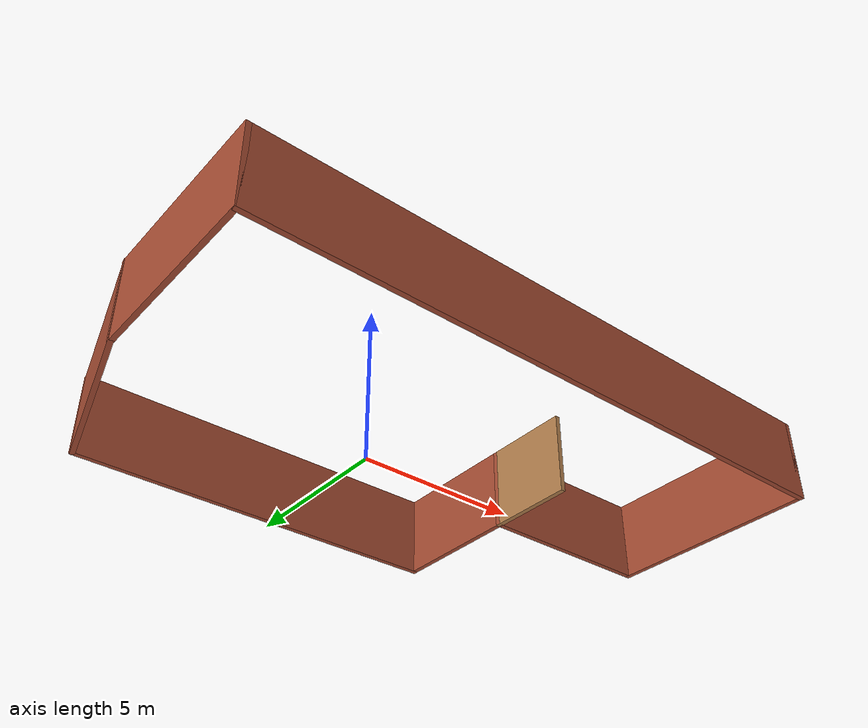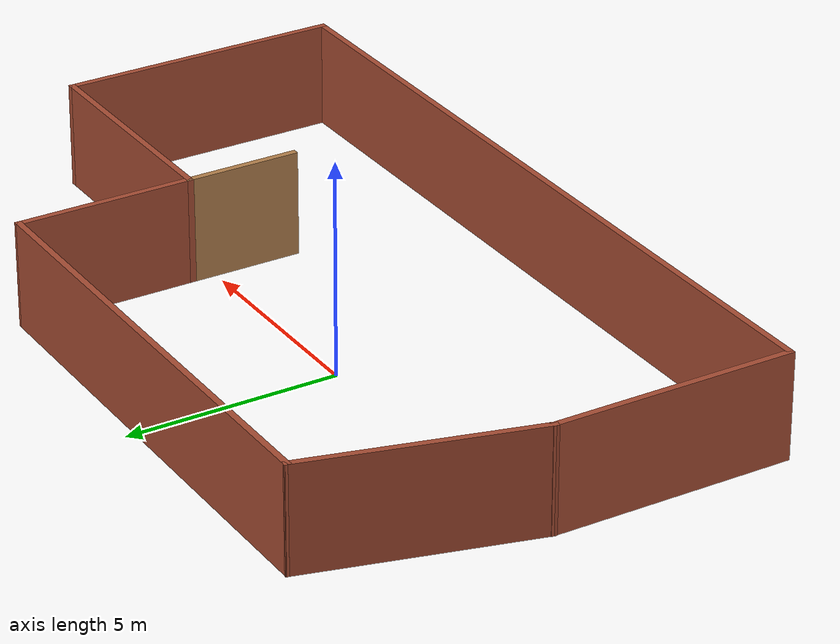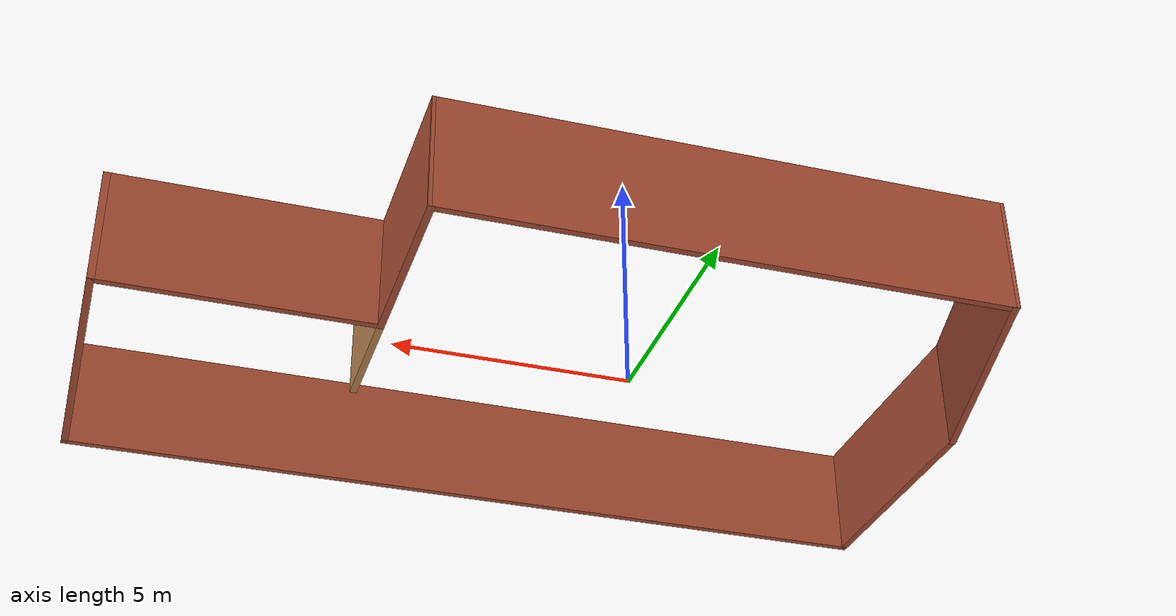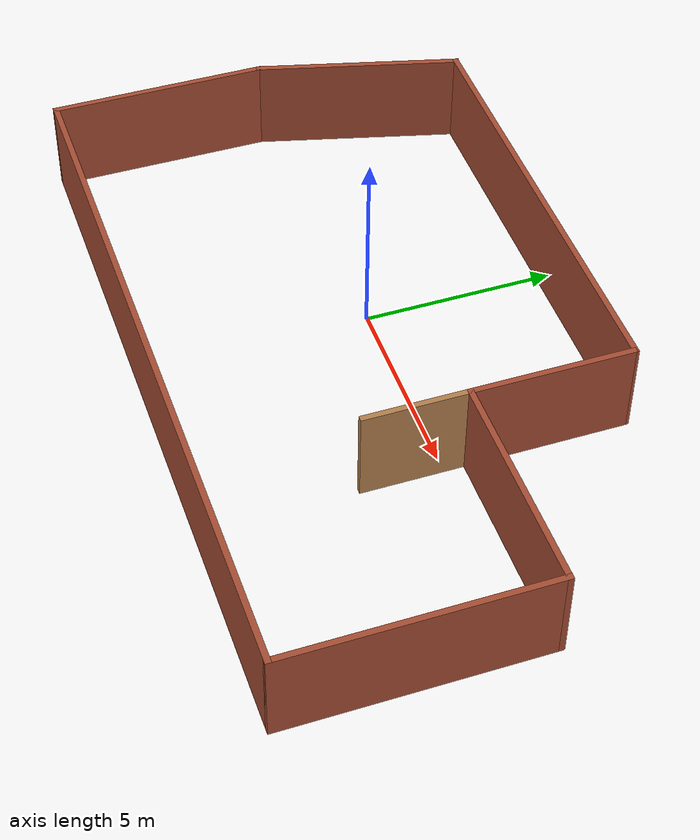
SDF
<?xml version='1.0'?>
<sdf version='1.7'>
  <model name='room_paln1'>
    <pose>1.63514 -0.630867 0 0 -0 0</pose>
    <link name='Wall_0'>
      <collision name='Wall_0_Collision'>
        <geometry>
          <box>
            <size>5.75 0.15 2.5</size>
          </box>
        </geometry>
        <pose>0 0 1.25 0 -0 0</pose>
      </collision>
      <visual name='Wall_0_Visual'>
        <pose>0 0 1.25 0 -0 0</pose>
        <geometry>
          <box>
            <size>5.75 0.15 2.5</size>
          </box>
        </geometry>
        <material>
          <script>
            <uri>file://media/materials/scripts/gazebo.material</uri>
            <name>Gazebo/Bricks</name>
          </script>
          <ambient>1 1 1 1</ambient>
        </material>
        <meta>
          <layer>0</layer>
        </meta>
      </visual>
      <pose>-9.29157 -2.59228 0 0 -0 -1.5708</pose>
    </link>
    <link name='Wall_1'>
      <collision name='Wall_1_Collision'>
        <geometry>
          <box>
            <size>18.75 0.15 2.5</size>
          </box>
        </geometry>
        <pose>0 0 1.25 0 -0 0</pose>
      </collision>
      <visual name='Wall_1_Visual'>
        <pose>0 0 1.25 0 -0 0</pose>
        <geometry>
          <box>
            <size>18.75 0.15 2.5</size>
          </box>
        </geometry>
        <material>
          <script>
            <uri>file://media/materials/scripts/gazebo.material</uri>
            <name>Gazebo/Bricks</name>
          </script>
          <ambient>1 1 1 1</ambient>
        </material>
        <meta>
          <layer>0</layer>
        </meta>
      </visual>
      <pose>0.008427 -5.39228 0 0 -0 0</pose>
    </link>
    <link name='Wall_10'>
      <collision name='Wall_10_Collision'>
        <geometry>
          <box>
            <size>11.7655 0.15 2.5</size>
          </box>
        </geometry>
        <pose>0 0 1.25 0 -0 0</pose>
      </collision>
      <visual name='Wall_10_Visual'>
        <pose>0 0 1.25 0 -0 0</pose>
        <geometry>
          <box>
            <size>11.7655 0.15 2.5</size>
          </box>
        </geometry>
        <material>
          <script>
            <uri>file://media/materials/scripts/gazebo.material</uri>
            <name>Gazebo/Bricks</name>
          </script>
          <ambient>1 1 1 1</ambient>
        </material>
        <meta>
          <layer>0</layer>
        </meta>
      </visual>
      <pose>-2.09923 5.34157 0 0 -0 -0.005829</pose>
    </link>
    <link name='Wall_2'>
      <collision name='Wall_2_Collision'>
        <geometry>
          <box>
            <size>6.75 0.15 2.5</size>
          </box>
        </geometry>
        <pose>0 0 1.25 0 -0 0</pose>
      </collision>
      <visual name='Wall_2_Visual'>
        <pose>0 0 1.25 0 -0 0</pose>
        <geometry>
          <box>
            <size>6.75 0.15 2.5</size>
          </box>
        </geometry>
        <material>
          <script>
            <uri>file://media/materials/scripts/gazebo.material</uri>
            <name>Gazebo/Bricks</name>
          </script>
          <ambient>1 1 1 1</ambient>
        </material>
        <meta>
          <layer>0</layer>
        </meta>
      </visual>
      <pose>9.30843 -2.09228 0 0 -0 1.5708</pose>
    </link>
    <link name='Wall_3'>
      <collision name='Wall_3_Collision'>
        <geometry>
          <box>
            <size>5.75 0.15 2.5</size>
          </box>
        </geometry>
        <pose>0 0 1.25 0 -0 0</pose>
      </collision>
      <visual name='Wall_3_Visual'>
        <pose>0 0 1.25 0 -0 0</pose>
        <geometry>
          <box>
            <size>5.75 0.15 2.5</size>
          </box>
        </geometry>
        <material>
          <script>
            <uri>file://media/materials/scripts/gazebo.material</uri>
            <name>Gazebo/Bricks</name>
          </script>
          <ambient>1 1 1 1</ambient>
        </material>
        <meta>
          <layer>0</layer>
        </meta>
      </visual>
      <pose>6.50843 1.20772 0 0 -0 3.14159</pose>
    </link>
    <link name='Wall_4'>
      <collision name='Wall_4_Collision'>
        <geometry>
          <box>
            <size>2.75 0.15 2.5</size>
          </box>
        </geometry>
        <pose>0 0 1.25 0 -0 0</pose>
      </collision>
      <visual name='Wall_4_Visual'>
        <pose>0 0 1.25 0 -0 0</pose>
        <geometry>
          <box>
            <size>2.75 0.15 2.5</size>
          </box>
        </geometry>
        <material>
          <script>
            <uri>file://media/materials/scripts/gazebo.material</uri>
            <name>Gazebo/Wood</name>
          </script>
          <ambient>1 1 1 1</ambient>
        </material>
        <meta>
          <layer>0</layer>
        </meta>
      </visual>
      <pose>3.70843 -0.092279 0 0 -0 -1.5708</pose>
    </link>
    <link name='Wall_6'>
      <collision name='Wall_6_Collision'>
        <geometry>
          <box>
            <size>4.25 0.15 2.5</size>
          </box>
        </geometry>
        <pose>0 0 1.25 0 -0 0</pose>
      </collision>
      <visual name='Wall_6_Visual'>
        <pose>0 0 1.25 0 -0 0</pose>
        <geometry>
          <box>
            <size>4.25 0.15 2.5</size>
          </box>
        </geometry>
        <material>
          <script>
            <uri>file://media/materials/scripts/gazebo.material</uri>
            <name>Gazebo/Bricks</name>
          </script>
          <ambient>1 1 1 1</ambient>
        </material>
        <meta>
          <layer>0</layer>
        </meta>
      </visual>
      <pose>3.70843 3.25772 0 0 -0 1.5708</pose>
    </link>
    <link name='Wall_9'>
      <collision name='Wall_9_Collision'>
        <geometry>
          <box>
            <size>5.5 0.15 2.5</size>
          </box>
        </geometry>
        <pose>0 0 1.25 0 -0 0</pose>
      </collision>
      <visual name='Wall_9_Visual'>
        <pose>0 0 1.25 0 -0 0</pose>
        <geometry>
          <box>
            <size>5.5 0.15 2.5</size>
          </box>
        </geometry>
        <material>
          <script>
            <uri>file://media/materials/scripts/gazebo.material</uri>
            <name>Gazebo/Bricks</name>
          </script>
          <ambient>1 1 1 1</ambient>
        </material>
        <meta>
          <layer>0</layer>
        </meta>
      </visual>
      <pose>-8.59923 2.79157 0 0 -0 1.309</pose>
    </link>
    <static>1</static>
  </model>
</sdf>
